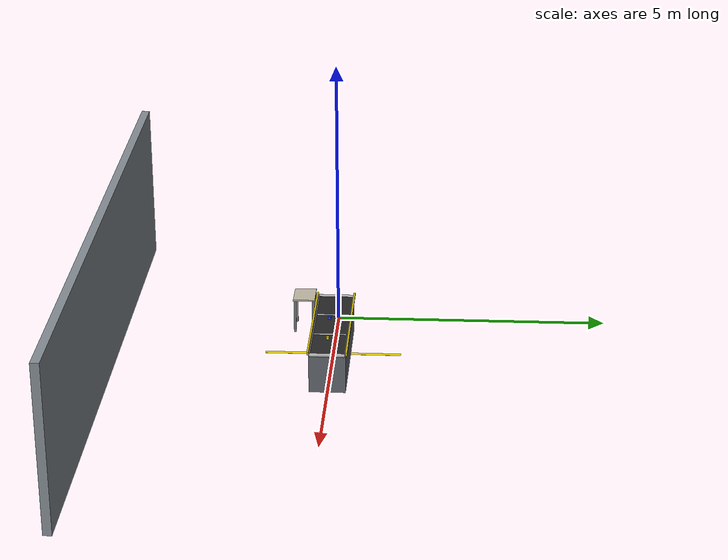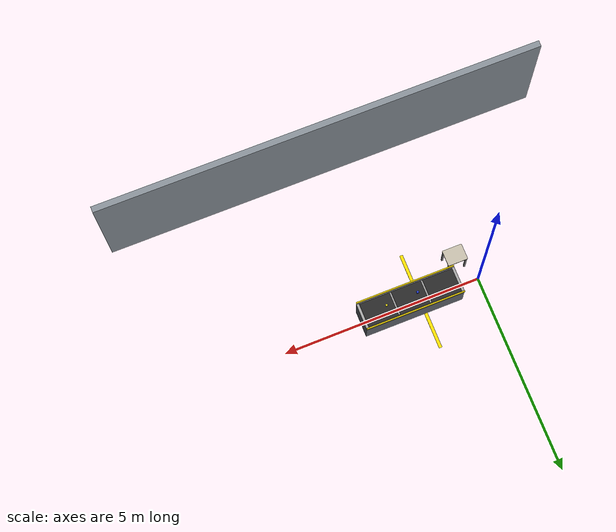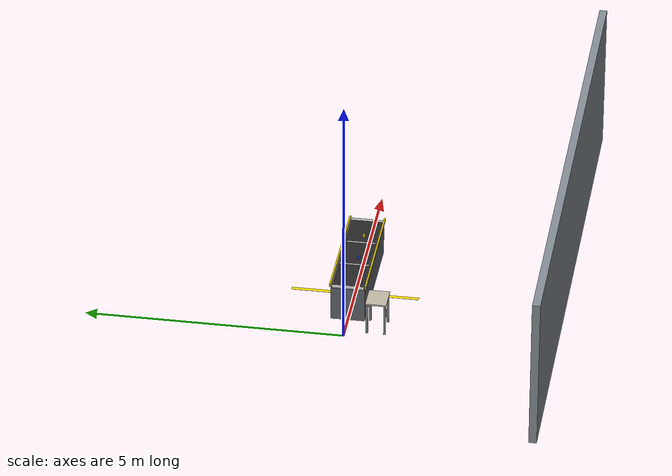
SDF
<sdf version="1.9">
 <world name="panda_factory">
  <model name="safety_line_right">
   <static>true</static>
   <pose>1.5 0 0.001 0 0 0</pose>
   <link name="line_link">
    <visual name="line_visual">
     <geometry><box><size>0.08 2.48 0.002</size></box></geometry>
     <material>
      <ambient>0.85 0.75 0.0 1</ambient>
      <diffuse>0.95 0.85 0.0 1</diffuse>
      <specular>0.3 0.3 0.0 1</specular>
      <emissive>0.1 0.09 0.0 1</emissive>
     </material>
    </visual>
   </link>
  </model>
  <model name="conveyor_belt">
   <static>true</static>
   <link name="belt_surface">
    <pose>1.8 0 0.72 0 0 0</pose>
    <collision name="belt_collision">
     <geometry><box><size>2.4 0.6 0.02</size></box></geometry>
     <surface><friction><ode><mu>1.0</mu><mu2>1.0</mu2></ode></friction></surface>
    </collision>
    <visual name="belt_visual">
     <geometry><box><size>2.4 0.6 0.02</size></box></geometry>
     <material>
      <ambient>0.08 0.08 0.08 1</ambient>
      <diffuse>0.15 0.15 0.15 1</diffuse>
      <specular>0.05 0.05 0.05 1</specular>
     </material>
    </visual>
   </link>
   <link name="belt_frame">
    <pose>1.8 0 0.36 0 0 0</pose>
    <visual name="frame_visual">
     <geometry><box><size>2.5 0.65 0.7</size></box></geometry>
     <material>
      <ambient>0.28 0.30 0.33 1</ambient>
      <diffuse>0.38 0.40 0.43 1</diffuse>
      <specular>0.4 0.4 0.4 1</specular>
     </material>
    </visual>
    <collision name="frame_collision"><geometry><box><size>2.5 0.65 0.7</size></box></geometry></collision>
   </link>
   <link name="left_rail">
    <pose>1.8 -0.34 0.76 0 0 0</pose>
    <visual name="rail_visual">
     <geometry><box><size>2.5 0.03 0.06</size></box></geometry>
     <material>
      <ambient>0.7 0.6 0.0 1</ambient>
      <diffuse>0.85 0.75 0.0 1</diffuse>
      <specular>0.4 0.4 0.1 1</specular>
     </material>
    </visual>
   </link>
   <link name="right_rail">
    <pose>1.8 0.34 0.76 0 0 0</pose>
    <visual name="rail_visual">
     <geometry><box><size>2.5 0.03 0.06</size></box></geometry>
     <material>
      <ambient>0.7 0.6 0.0 1</ambient>
      <diffuse>0.85 0.75 0.0 1</diffuse>
      <specular>0.4 0.4 0.1 1</specular>
     </material>
    </visual>
   </link>
   <link name="front_roller">
    <pose>0.58 0 0.72 1.5708 0 0</pose>
    <visual name="roller_visual">
     <geometry><cylinder><radius>0.035</radius><length>0.62</length></cylinder></geometry>
     <material>
      <ambient>0.5 0.5 0.5 1</ambient>
      <diffuse>0.65 0.65 0.65 1</diffuse>
      <specular>0.7 0.7 0.7 1</specular>
     </material>
    </visual>
   </link>
   <link name="rear_roller">
    <pose>3.02 0 0.72 1.5708 0 0</pose>
    <visual name="roller_visual">
     <geometry><cylinder><radius>0.035</radius><length>0.62</length></cylinder></geometry>
     <material>
      <ambient>0.5 0.5 0.5 1</ambient>
      <diffuse>0.65 0.65 0.65 1</diffuse>
      <specular>0.7 0.7 0.7 1</specular>
     </material>
    </visual>
   </link>
   <link name="middle_roller_1">
    <pose>1.4 0 0.72 1.5708 0 0</pose>
    <visual name="roller_visual">
     <geometry><cylinder><radius>0.025</radius><length>0.58</length></cylinder></geometry>
     <material>
      <ambient>0.45 0.45 0.45 1</ambient>
      <diffuse>0.6 0.6 0.6 1</diffuse>
      <specular>0.65 0.65 0.65 1</specular>
     </material>
    </visual>
   </link>
   <link name="middle_roller_2">
    <pose>2.2 0 0.72 1.5708 0 0</pose>
    <visual name="roller_visual">
     <geometry><cylinder><radius>0.025</radius><length>0.58</length></cylinder></geometry>
     <material>
      <ambient>0.45 0.45 0.45 1</ambient>
      <diffuse>0.6 0.6 0.6 1</diffuse>
      <specular>0.65 0.65 0.65 1</specular>
     </material>
    </visual>
   </link>
  </model>
  <model name="product_box_blue">
   <static>false</static>
   <pose>1.6 -0.05 0.77 0 0 -0.05</pose>
   <link name="box_link">
    <inertial>
     <mass>0.25</mass>
     <inertia><ixx>0.00006</ixx><iyy>0.00006</iyy><izz>0.00004</izz></inertia>
    </inertial>
    <collision name="box_collision"><geometry><box><size>0.05 0.05 0.05</size></box></geometry></collision>
    <visual name="box_visual">
     <geometry><box><size>0.05 0.05 0.05</size></box></geometry>
     <material>
      <ambient>0.1 0.15 0.7 1</ambient>
      <diffuse>0.15 0.25 0.85 1</diffuse>
      <specular>0.1 0.1 0.3 1</specular>
     </material>
    </visual>
   </link>
  </model>
  <model name="product_cylinder_yellow">
   <static>false</static>
   <pose>2.4 -0.03 0.76 0 0 0</pose>
   <link name="cyl_link">
    <inertial><mass>0.2</mass><inertia><ixx>0.00004</ixx><iyy>0.00004</iyy><izz>0.00003</izz></inertia></inertial>
    <collision name="cyl_collision">
     <geometry><cylinder><radius>0.025</radius><length>0.05</length></cylinder></geometry>
    </collision>
    <visual name="cyl_visual">
     <geometry><cylinder><radius>0.025</radius><length>0.05</length></cylinder></geometry>
     <material>
      <ambient>0.8 0.7 0.05 1</ambient>
      <diffuse>0.9 0.85 0.1 1</diffuse>
      <specular>0.3 0.3 0.1 1</specular>
     </material>
    </visual>
   </link>
  </model>
  <model name="wall_left">
   <static>true</static>
   <pose>2.5 -4 1.5 0 0 0</pose>
   <link name="wall_link">
    <visual name="wall_visual">
     <geometry><box><size>11 0.15 3.0</size></box></geometry>
     <material>
      <ambient>0.42 0.45 0.48 1</ambient>
      <diffuse>0.52 0.55 0.58 1</diffuse>
      <specular>0.08 0.08 0.08 1</specular>
     </material>
    </visual>
    <collision name="wall_collision"><geometry><box><size>11 0.15 3.0</size></box></geometry></collision>
   </link>
  </model>
  <model name="place_table">
   <static>true</static>
   <pose>0.4 -0.6 0 0 0 0</pose>
   <link name="top">
    <pose>0 0 0.65 0 0 0</pose>
    <collision name="col"><geometry><box><size>0.5 0.4 0.03</size></box></geometry></collision>
    <visual name="vis">
     <geometry><box><size>0.5 0.4 0.03</size></box></geometry>
     <material>
      <ambient>0.6 0.58 0.52 1</ambient>
      <diffuse>0.75 0.72 0.65 1</diffuse>
      <specular>0.2 0.2 0.2 1</specular>
     </material>
    </visual>
   </link>
   <link name="leg1">
    <pose>0.22 0.17 0.325 0 0 0</pose>
    <visual name="vis">
     <geometry><box><size>0.04 0.04 0.65</size></box></geometry>
     <material>
      <ambient>0.35 0.35 0.35 1</ambient>
      <diffuse>0.5 0.5 0.5 1</diffuse>
      <specular>0.4 0.4 0.4 1</specular>
     </material>
    </visual>
   </link>
   <link name="leg2">
    <pose>-0.22 0.17 0.325 0 0 0</pose>
    <visual name="vis">
     <geometry><box><size>0.04 0.04 0.65</size></box></geometry>
     <material>
      <ambient>0.35 0.35 0.35 1</ambient>
      <diffuse>0.5 0.5 0.5 1</diffuse>
      <specular>0.4 0.4 0.4 1</specular>
     </material>
    </visual>
   </link>
   <link name="leg3">
    <pose>0.22 -0.17 0.325 0 0 0</pose>
    <visual name="vis">
     <geometry><box><size>0.04 0.04 0.65</size></box></geometry>
     <material>
      <ambient>0.35 0.35 0.35 1</ambient>
      <diffuse>0.5 0.5 0.5 1</diffuse>
      <specular>0.4 0.4 0.4 1</specular>
     </material>
    </visual>
   </link>
   <link name="leg4">
    <pose>-0.22 -0.17 0.325 0 0 0</pose>
    <visual name="vis">
     <geometry><box><size>0.04 0.04 0.65</size></box></geometry>
     <material>
      <ambient>0.35 0.35 0.35 1</ambient>
      <diffuse>0.5 0.5 0.5 1</diffuse>
      <specular>0.4 0.4 0.4 1</specular>
     </material>
    </visual>
   </link>
  </model>
 </world>
</sdf>
